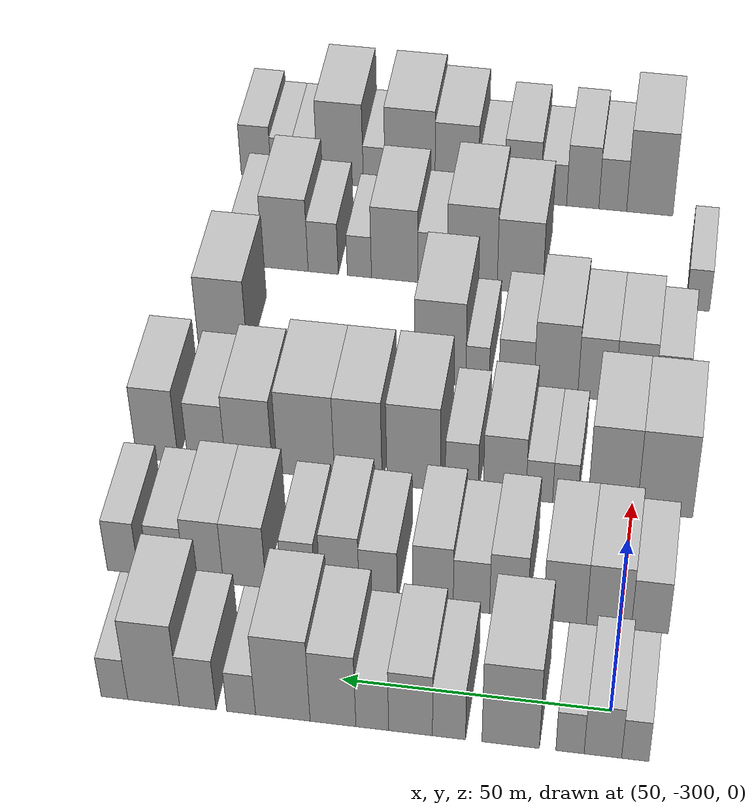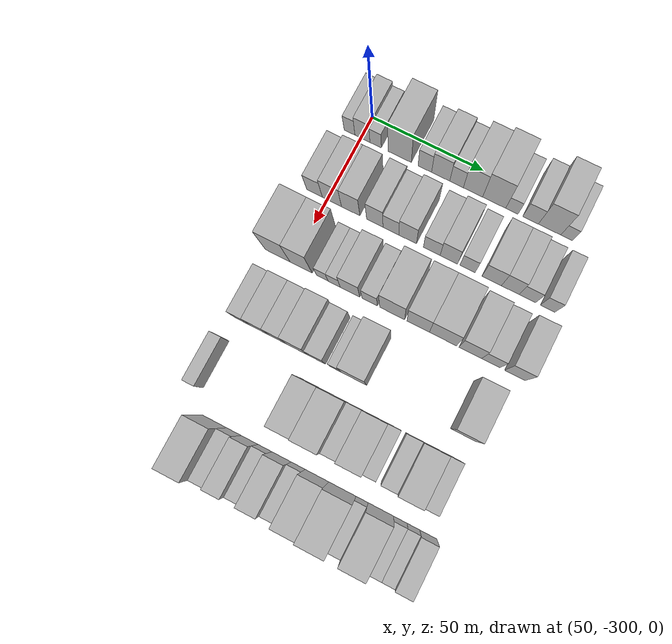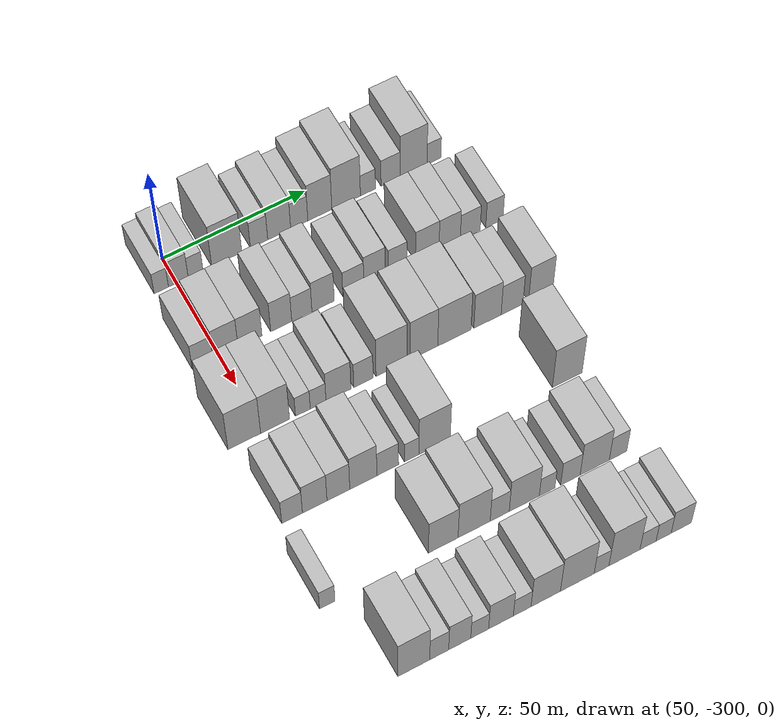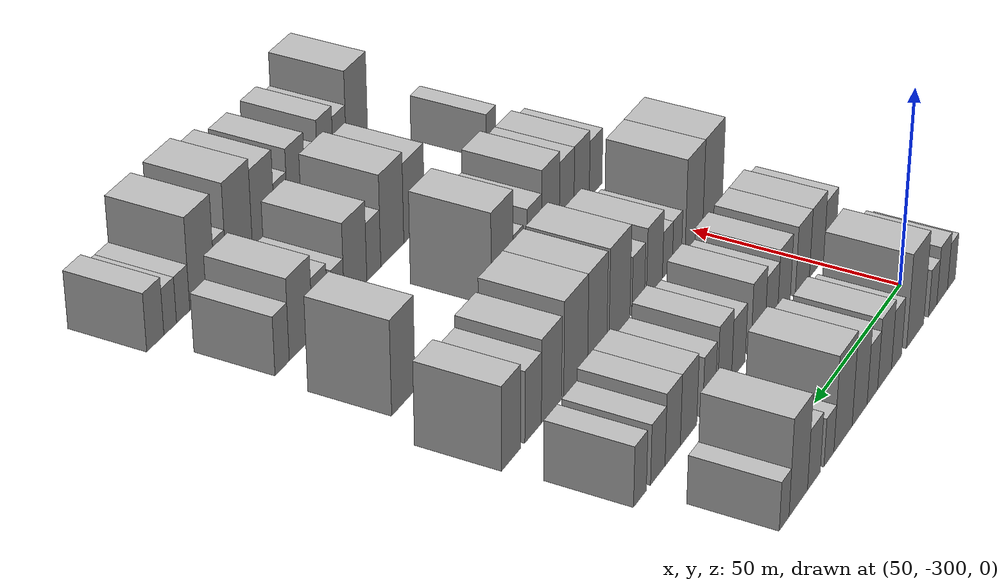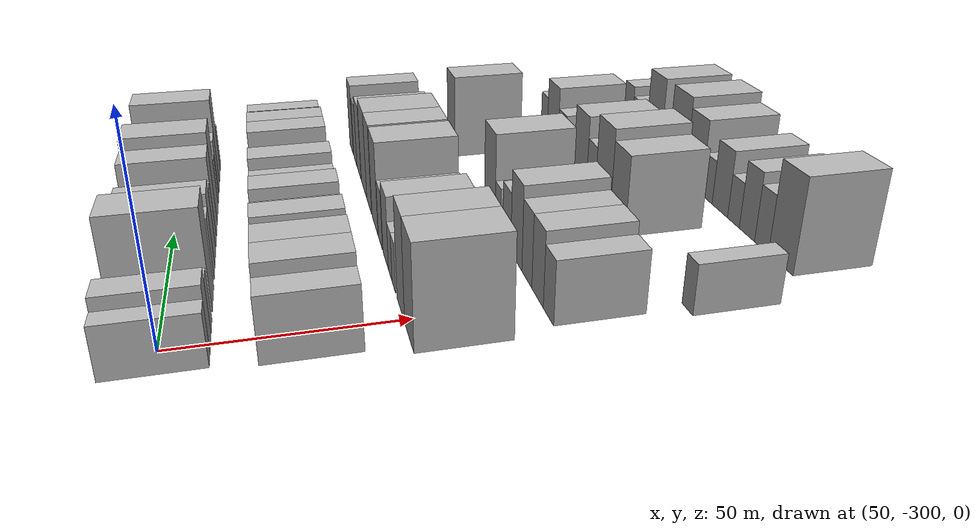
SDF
<sdf version="1.6">
 <world name="default">
  <model name="building_24">
   <static>1</static>
   <pose>50.0000 -305.2619 0 0.000000 0.000000 0.000000</pose>
   <link name="link">
    <pose>0 0 6.00 0 0 0</pose>
    <collision name="collision"><geometry><box><size>20.0000 4.9245 12.0000</size></box></geometry></collision>
    <visual name="visual">
     <cast_shadows>0</cast_shadows>
     <geometry><box><size>20.0000 4.9245 12.0000</size></box></geometry>
     <material>
      <script>
       <uri>model://HANNAS_wall/materials/scripts</uri>
       <uri>model://HANNAS_wall/materials/textures</uri>
       <name>vrc/HANNAS_wall</name>
      </script>
     </material>
    </visual>
   </link>
  </model>
  <model name="building_25">
   <static>1</static>
   <pose>50.0000 -299.4047 0 0.000000 0.000000 0.000000</pose>
   <link name="link">
    <pose>0 0 7.50 0 0 0</pose>
    <collision name="collision"><geometry><box><size>20.0000 6.7900 15.0000</size></box></geometry></collision>
    <visual name="visual">
     <cast_shadows>0</cast_shadows>
     <geometry><box><size>20.0000 6.7900 15.0000</size></box></geometry>
     <material>
      <script>
       <uri>model://HANNAS_wall/materials/scripts</uri>
       <uri>model://HANNAS_wall/materials/textures</uri>
       <name>vrc/HANNAS_wall</name>
      </script>
     </material>
    </visual>
   </link>
  </model>
  <model name="building_26">
   <static>1</static>
   <pose>50.0000 -293.4387 0 0.000000 0.000000 0.000000</pose>
   <link name="link">
    <pose>0 0 6.00 0 0 0</pose>
    <collision name="collision"><geometry><box><size>20.0000 5.1421 12.0000</size></box></geometry></collision>
    <visual name="visual">
     <cast_shadows>0</cast_shadows>
     <geometry><box><size>20.0000 5.1421 12.0000</size></box></geometry>
     <material>
      <script>
       <uri>model://HANNAS_wall/materials/scripts</uri>
       <uri>model://HANNAS_wall/materials/textures</uri>
       <name>vrc/HANNAS_wall</name>
      </script>
     </material>
    </visual>
   </link>
  </model>
  <model name="building_27">
   <static>1</static>
   <pose>50.0000 -282.6276 0 0.000000 0.000000 0.000000</pose>
   <link name="link">
    <pose>0 0 12.00 0 0 0</pose>
    <collision name="collision"><geometry><box><size>20.0000 10.4801 24.0000</size></box></geometry></collision>
    <visual name="visual">
     <cast_shadows>0</cast_shadows>
     <geometry><box><size>20.0000 10.4801 24.0000</size></box></geometry>
     <material>
      <script>
       <uri>model://HANNAS_wall/materials/scripts</uri>
       <uri>model://HANNAS_wall/materials/textures</uri>
       <name>vrc/HANNAS_wall</name>
      </script>
     </material>
    </visual>
   </link>
  </model>
  <model name="building_28">
   <static>1</static>
   <pose>50.0000 -271.3541 0 0.000000 0.000000 0.000000</pose>
   <link name="link">
    <pose>0 0 7.50 0 0 0</pose>
    <collision name="collision"><geometry><box><size>20.0000 6.0669 15.0000</size></box></geometry></collision>
    <visual name="visual">
     <cast_shadows>0</cast_shadows>
     <geometry><box><size>20.0000 6.0669 15.0000</size></box></geometry>
     <material>
      <script>
       <uri>model://HANNAS_wall/materials/scripts</uri>
       <uri>model://HANNAS_wall/materials/textures</uri>
       <name>vrc/HANNAS_wall</name>
      </script>
     </material>
    </visual>
   </link>
  </model>
  <model name="building_29">
   <static>1</static>
   <pose>50.0000 -264.2918 0 0.000000 0.000000 0.000000</pose>
   <link name="link">
    <pose>0 0 9.00 0 0 0</pose>
    <collision name="collision"><geometry><box><size>20.0000 8.0576 18.0000</size></box></geometry></collision>
    <visual name="visual">
     <cast_shadows>0</cast_shadows>
     <geometry><box><size>20.0000 8.0576 18.0000</size></box></geometry>
     <material>
      <script>
       <uri>model://HANNAS_wall/materials/scripts</uri>
       <uri>model://HANNAS_wall/materials/textures</uri>
       <name>vrc/HANNAS_wall</name>
      </script>
     </material>
    </visual>
   </link>
  </model>
  <model name="building_30">
   <static>1</static>
   <pose>50.0000 -257.2334 0 0.000000 0.000000 0.000000</pose>
   <link name="link">
    <pose>0 0 7.50 0 0 0</pose>
    <collision name="collision"><geometry><box><size>20.0000 6.0591 15.0000</size></box></geometry></collision>
    <visual name="visual">
     <cast_shadows>0</cast_shadows>
     <geometry><box><size>20.0000 6.0591 15.0000</size></box></geometry>
     <material>
      <script>
       <uri>model://HANNAS_wall/materials/scripts</uri>
       <uri>model://HANNAS_wall/materials/textures</uri>
       <name>vrc/HANNAS_wall</name>
      </script>
     </material>
    </visual>
   </link>
  </model>
  <model name="building_31">
   <static>1</static>
   <pose>50.0000 -249.9529 0 0.000000 0.000000 0.000000</pose>
   <link name="link">
    <pose>0 0 10.50 0 0 0</pose>
    <collision name="collision"><geometry><box><size>20.0000 8.5019 21.0000</size></box></geometry></collision>
    <visual name="visual">
     <cast_shadows>0</cast_shadows>
     <geometry><box><size>20.0000 8.5019 21.0000</size></box></geometry>
     <material>
      <script>
       <uri>model://HANNAS_wall/materials/scripts</uri>
       <uri>model://HANNAS_wall/materials/textures</uri>
       <name>vrc/HANNAS_wall</name>
      </script>
     </material>
    </visual>
   </link>
  </model>
  <model name="building_32">
   <static>1</static>
   <pose>50.0000 -240.6253 0 0.000000 0.000000 0.000000</pose>
   <link name="link">
    <pose>0 0 12.00 0 0 0</pose>
    <collision name="collision"><geometry><box><size>20.0000 10.1534 24.0000</size></box></geometry></collision>
    <visual name="visual">
     <cast_shadows>0</cast_shadows>
     <geometry><box><size>20.0000 10.1534 24.0000</size></box></geometry>
     <material>
      <script>
       <uri>model://HANNAS_wall/materials/scripts</uri>
       <uri>model://HANNAS_wall/materials/textures</uri>
       <name>vrc/HANNAS_wall</name>
      </script>
     </material>
    </visual>
   </link>
  </model>
  <model name="building_33">
   <static>1</static>
   <pose>50.0000 -232.8505 0 0.000000 0.000000 0.000000</pose>
   <link name="link">
    <pose>0 0 6.00 0 0 0</pose>
    <collision name="collision"><geometry><box><size>20.0000 5.3963 12.0000</size></box></geometry></collision>
    <visual name="visual">
     <cast_shadows>0</cast_shadows>
     <geometry><box><size>20.0000 5.3963 12.0000</size></box></geometry>
     <material>
      <script>
       <uri>model://HANNAS_wall/materials/scripts</uri>
       <uri>model://HANNAS_wall/materials/textures</uri>
       <name>vrc/HANNAS_wall</name>
      </script>
     </material>
    </visual>
   </link>
  </model>
  <model name="building_34">
   <static>1</static>
   <pose>50.0000 -224.7218 0 0.000000 0.000000 0.000000</pose>
   <link name="link">
    <pose>0 0 7.50 0 0 0</pose>
    <collision name="collision"><geometry><box><size>20.0000 6.8612 15.0000</size></box></geometry></collision>
    <visual name="visual">
     <cast_shadows>0</cast_shadows>
     <geometry><box><size>20.0000 6.8612 15.0000</size></box></geometry>
     <material>
      <script>
       <uri>model://HANNAS_wall/materials/scripts</uri>
       <uri>model://HANNAS_wall/materials/textures</uri>
       <name>vrc/HANNAS_wall</name>
      </script>
     </material>
    </visual>
   </link>
  </model>
  <model name="building_35">
   <static>1</static>
   <pose>50.0000 -216.4351 0 0.000000 0.000000 0.000000</pose>
   <link name="link">
    <pose>0 0 12.00 0 0 0</pose>
    <collision name="collision"><geometry><box><size>20.0000 9.7122 24.0000</size></box></geometry></collision>
    <visual name="visual">
     <cast_shadows>0</cast_shadows>
     <geometry><box><size>20.0000 9.7122 24.0000</size></box></geometry>
     <material>
      <script>
       <uri>model://HANNAS_wall/materials/scripts</uri>
       <uri>model://HANNAS_wall/materials/textures</uri>
       <name>vrc/HANNAS_wall</name>
      </script>
     </material>
    </visual>
   </link>
  </model>
  <model name="building_36">
   <static>1</static>
   <pose>50.0000 -209.0599 0 0.000000 0.000000 0.000000</pose>
   <link name="link">
    <pose>0 0 6.00 0 0 0</pose>
    <collision name="collision"><geometry><box><size>20.0000 5.0381 12.0000</size></box></geometry></collision>
    <visual name="visual">
     <cast_shadows>0</cast_shadows>
     <geometry><box><size>20.0000 5.0381 12.0000</size></box></geometry>
     <material>
      <script>
       <uri>model://HANNAS_wall/materials/scripts</uri>
       <uri>model://HANNAS_wall/materials/textures</uri>
       <name>vrc/HANNAS_wall</name>
      </script>
     </material>
    </visual>
   </link>
  </model>
  <model name="building_135">
   <static>1</static>
   <pose>79.0000 -305.7151 0 0.000000 0.000000 0.000000</pose>
   <link name="link">
    <pose>0 0 7.50 0 0 0</pose>
    <collision name="collision"><geometry><box><size>20.0000 7.0345 15.0000</size></box></geometry></collision>
    <visual name="visual">
     <cast_shadows>0</cast_shadows>
     <geometry><box><size>20.0000 7.0345 15.0000</size></box></geometry>
     <material>
      <script>
       <uri>model://HANNAS_wall/materials/scripts</uri>
       <uri>model://HANNAS_wall/materials/textures</uri>
       <name>vrc/HANNAS_wall</name>
      </script>
     </material>
    </visual>
   </link>
  </model>
  <model name="building_136">
   <static>1</static>
   <pose>79.0000 -297.9219 0 0.000000 0.000000 0.000000</pose>
   <link name="link">
    <pose>0 0 9.00 0 0 0</pose>
    <collision name="collision"><geometry><box><size>20.0000 8.5520 18.0000</size></box></geometry></collision>
    <visual name="visual">
     <cast_shadows>0</cast_shadows>
     <geometry><box><size>20.0000 8.5520 18.0000</size></box></geometry>
     <material>
      <script>
       <uri>model://HANNAS_wall/materials/scripts</uri>
       <uri>model://HANNAS_wall/materials/textures</uri>
       <name>vrc/HANNAS_wall</name>
      </script>
     </material>
    </visual>
   </link>
  </model>
  <model name="building_137">
   <static>1</static>
   <pose>79.0000 -289.5466 0 0.000000 0.000000 0.000000</pose>
   <link name="link">
    <pose>0 0 9.00 0 0 0</pose>
    <collision name="collision"><geometry><box><size>20.0000 8.1985 18.0000</size></box></geometry></collision>
    <visual name="visual">
     <cast_shadows>0</cast_shadows>
     <geometry><box><size>20.0000 8.1985 18.0000</size></box></geometry>
     <material>
      <script>
       <uri>model://HANNAS_wall/materials/scripts</uri>
       <uri>model://HANNAS_wall/materials/textures</uri>
       <name>vrc/HANNAS_wall</name>
      </script>
     </material>
    </visual>
   </link>
  </model>
  <model name="building_138">
   <static>1</static>
   <pose>79.0000 -278.8216 0 0.000000 0.000000 0.000000</pose>
   <link name="link">
    <pose>0 0 9.00 0 0 0</pose>
    <collision name="collision"><geometry><box><size>20.0000 7.2515 18.0000</size></box></geometry></collision>
    <visual name="visual">
     <cast_shadows>0</cast_shadows>
     <geometry><box><size>20.0000 7.2515 18.0000</size></box></geometry>
     <material>
      <script>
       <uri>model://HANNAS_wall/materials/scripts</uri>
       <uri>model://HANNAS_wall/materials/textures</uri>
       <name>vrc/HANNAS_wall</name>
      </script>
     </material>
    </visual>
   </link>
  </model>
  <model name="building_139">
   <static>1</static>
   <pose>79.0000 -271.7017 0 0.000000 0.000000 0.000000</pose>
   <link name="link">
    <pose>0 0 7.50 0 0 0</pose>
    <collision name="collision"><geometry><box><size>20.0000 6.9884 15.0000</size></box></geometry></collision>
    <visual name="visual">
     <cast_shadows>0</cast_shadows>
     <geometry><box><size>20.0000 6.9884 15.0000</size></box></geometry>
     <material>
      <script>
       <uri>model://HANNAS_wall/materials/scripts</uri>
       <uri>model://HANNAS_wall/materials/textures</uri>
       <name>vrc/HANNAS_wall</name>
      </script>
     </material>
    </visual>
   </link>
  </model>
  <model name="building_140">
   <static>1</static>
   <pose>79.0000 -264.3253 0 0.000000 0.000000 0.000000</pose>
   <link name="link">
    <pose>0 0 9.00 0 0 0</pose>
    <collision name="collision"><geometry><box><size>20.0000 7.7644 18.0000</size></box></geometry></collision>
    <visual name="visual">
     <cast_shadows>0</cast_shadows>
     <geometry><box><size>20.0000 7.7644 18.0000</size></box></geometry>
     <material>
      <script>
       <uri>model://HANNAS_wall/materials/scripts</uri>
       <uri>model://HANNAS_wall/materials/textures</uri>
       <name>vrc/HANNAS_wall</name>
      </script>
     </material>
    </visual>
   </link>
  </model>
  <model name="building_141">
   <static>1</static>
   <pose>79.0000 -253.7672 0 0.000000 0.000000 0.000000</pose>
   <link name="link">
    <pose>0 0 7.50 0 0 0</pose>
    <collision name="collision"><geometry><box><size>20.0000 7.3520 15.0000</size></box></geometry></collision>
    <visual name="visual">
     <cast_shadows>0</cast_shadows>
     <geometry><box><size>20.0000 7.3520 15.0000</size></box></geometry>
     <material>
      <script>
       <uri>model://HANNAS_wall/materials/scripts</uri>
       <uri>model://HANNAS_wall/materials/textures</uri>
       <name>vrc/HANNAS_wall</name>
      </script>
     </material>
    </visual>
   </link>
  </model>
  <model name="building_142">
   <static>1</static>
   <pose>79.0000 -246.3065 0 0.000000 0.000000 0.000000</pose>
   <link name="link">
    <pose>0 0 9.00 0 0 0</pose>
    <collision name="collision"><geometry><box><size>20.0000 7.5694 18.0000</size></box></geometry></collision>
    <visual name="visual">
     <cast_shadows>0</cast_shadows>
     <geometry><box><size>20.0000 7.5694 18.0000</size></box></geometry>
     <material>
      <script>
       <uri>model://HANNAS_wall/materials/scripts</uri>
       <uri>model://HANNAS_wall/materials/textures</uri>
       <name>vrc/HANNAS_wall</name>
      </script>
     </material>
    </visual>
   </link>
  </model>
  <model name="building_143">
   <static>1</static>
   <pose>79.0000 -238.2135 0 0.000000 0.000000 0.000000</pose>
   <link name="link">
    <pose>0 0 7.50 0 0 0</pose>
    <collision name="collision"><geometry><box><size>20.0000 6.6166 15.0000</size></box></geometry></collision>
    <visual name="visual">
     <cast_shadows>0</cast_shadows>
     <geometry><box><size>20.0000 6.6166 15.0000</size></box></geometry>
     <material>
      <script>
       <uri>model://HANNAS_wall/materials/scripts</uri>
       <uri>model://HANNAS_wall/materials/textures</uri>
       <name>vrc/HANNAS_wall</name>
      </script>
     </material>
    </visual>
   </link>
  </model>
  <model name="building_144">
   <static>1</static>
   <pose>79.0000 -227.7275 0 0.000000 0.000000 0.000000</pose>
   <link name="link">
    <pose>0 0 9.00 0 0 0</pose>
    <collision name="collision"><geometry><box><size>20.0000 8.3553 18.0000</size></box></geometry></collision>
    <visual name="visual">
     <cast_shadows>0</cast_shadows>
     <geometry><box><size>20.0000 8.3553 18.0000</size></box></geometry>
     <material>
      <script>
       <uri>model://HANNAS_wall/materials/scripts</uri>
       <uri>model://HANNAS_wall/materials/textures</uri>
       <name>vrc/HANNAS_wall</name>
      </script>
     </material>
    </visual>
   </link>
  </model>
  <model name="building_145">
   <static>1</static>
   <pose>79.0000 -219.7499 0 0.000000 0.000000 0.000000</pose>
   <link name="link">
    <pose>0 0 9.00 0 0 0</pose>
    <collision name="collision"><geometry><box><size>20.0000 7.6000 18.0000</size></box></geometry></collision>
    <visual name="visual">
     <cast_shadows>0</cast_shadows>
     <geometry><box><size>20.0000 7.6000 18.0000</size></box></geometry>
     <material>
      <script>
       <uri>model://HANNAS_wall/materials/scripts</uri>
       <uri>model://HANNAS_wall/materials/textures</uri>
       <name>vrc/HANNAS_wall</name>
      </script>
     </material>
    </visual>
   </link>
  </model>
  <model name="building_146">
   <static>1</static>
   <pose>79.0000 -212.3900 0 0.000000 0.000000 0.000000</pose>
   <link name="link">
    <pose>0 0 7.50 0 0 0</pose>
    <collision name="collision"><geometry><box><size>20.0000 7.1197 15.0000</size></box></geometry></collision>
    <visual name="visual">
     <cast_shadows>0</cast_shadows>
     <geometry><box><size>20.0000 7.1197 15.0000</size></box></geometry>
     <material>
      <script>
       <uri>model://HANNAS_wall/materials/scripts</uri>
       <uri>model://HANNAS_wall/materials/textures</uri>
       <name>vrc/HANNAS_wall</name>
      </script>
     </material>
    </visual>
   </link>
  </model>
  <model name="building_147">
   <static>1</static>
   <pose>79.0000 -203.7440 0 0.000000 0.000000 0.000000</pose>
   <link name="link">
    <pose>0 0 7.50 0 0 0</pose>
    <collision name="collision"><geometry><box><size>20.0000 6.1723 15.0000</size></box></geometry></collision>
    <visual name="visual">
     <cast_shadows>0</cast_shadows>
     <geometry><box><size>20.0000 6.1723 15.0000</size></box></geometry>
     <material>
      <script>
       <uri>model://HANNAS_wall/materials/scripts</uri>
       <uri>model://HANNAS_wall/materials/textures</uri>
       <name>vrc/HANNAS_wall</name>
      </script>
     </material>
    </visual>
   </link>
  </model>
  <model name="building_247">
   <static>1</static>
   <pose>108.0000 -306.5224 0 0.000000 0.000000 0.000000</pose>
   <link name="link">
    <pose>0 0 12.00 0 0 0</pose>
    <collision name="collision"><geometry><box><size>20.0000 11.0101 24.0000</size></box></geometry></collision>
    <visual name="visual">
     <cast_shadows>0</cast_shadows>
     <geometry><box><size>20.0000 11.0101 24.0000</size></box></geometry>
     <material>
      <script>
       <uri>model://HANNAS_wall/materials/scripts</uri>
       <uri>model://HANNAS_wall/materials/textures</uri>
       <name>vrc/HANNAS_wall</name>
      </script>
     </material>
    </visual>
   </link>
  </model>
  <model name="building_248">
   <static>1</static>
   <pose>108.0000 -296.1351 0 0.000000 0.000000 0.000000</pose>
   <link name="link">
    <pose>0 0 12.00 0 0 0</pose>
    <collision name="collision"><geometry><box><size>20.0000 9.7645 24.0000</size></box></geometry></collision>
    <visual name="visual">
     <cast_shadows>0</cast_shadows>
     <geometry><box><size>20.0000 9.7645 24.0000</size></box></geometry>
     <material>
      <script>
       <uri>model://HANNAS_wall/materials/scripts</uri>
       <uri>model://HANNAS_wall/materials/textures</uri>
       <name>vrc/HANNAS_wall</name>
      </script>
     </material>
    </visual>
   </link>
  </model>
  <model name="building_249">
   <static>1</static>
   <pose>108.0000 -286.7347 0 0.000000 0.000000 0.000000</pose>
   <link name="link">
    <pose>0 0 6.00 0 0 0</pose>
    <collision name="collision"><geometry><box><size>20.0000 5.0363 12.0000</size></box></geometry></collision>
    <visual name="visual">
     <cast_shadows>0</cast_shadows>
     <geometry><box><size>20.0000 5.0363 12.0000</size></box></geometry>
     <material>
      <script>
       <uri>model://HANNAS_wall/materials/scripts</uri>
       <uri>model://HANNAS_wall/materials/textures</uri>
       <name>vrc/HANNAS_wall</name>
      </script>
     </material>
    </visual>
   </link>
  </model>
  <model name="building_250">
   <static>1</static>
   <pose>108.0000 -281.5437 0 0.000000 0.000000 0.000000</pose>
   <link name="link">
    <pose>0 0 6.00 0 0 0</pose>
    <collision name="collision"><geometry><box><size>20.0000 5.3458 12.0000</size></box></geometry></collision>
    <visual name="visual">
     <cast_shadows>0</cast_shadows>
     <geometry><box><size>20.0000 5.3458 12.0000</size></box></geometry>
     <material>
      <script>
       <uri>model://HANNAS_wall/materials/scripts</uri>
       <uri>model://HANNAS_wall/materials/textures</uri>
       <name>vrc/HANNAS_wall</name>
      </script>
     </material>
    </visual>
   </link>
  </model>
  <model name="building_251">
   <static>1</static>
   <pose>108.0000 -274.6024 0 0.000000 0.000000 0.000000</pose>
   <link name="link">
    <pose>0 0 9.00 0 0 0</pose>
    <collision name="collision"><geometry><box><size>20.0000 8.5367 18.0000</size></box></geometry></collision>
    <visual name="visual">
     <cast_shadows>0</cast_shadows>
     <geometry><box><size>20.0000 8.5367 18.0000</size></box></geometry>
     <material>
      <script>
       <uri>model://HANNAS_wall/materials/scripts</uri>
       <uri>model://HANNAS_wall/materials/textures</uri>
       <name>vrc/HANNAS_wall</name>
      </script>
     </material>
    </visual>
   </link>
  </model>
  <model name="building_252">
   <static>1</static>
   <pose>108.0000 -266.0245 0 0.000000 0.000000 0.000000</pose>
   <link name="link">
    <pose>0 0 7.50 0 0 0</pose>
    <collision name="collision"><geometry><box><size>20.0000 6.6192 15.0000</size></box></geometry></collision>
    <visual name="visual">
     <cast_shadows>0</cast_shadows>
     <geometry><box><size>20.0000 6.6192 15.0000</size></box></geometry>
     <material>
      <script>
       <uri>model://HANNAS_wall/materials/scripts</uri>
       <uri>model://HANNAS_wall/materials/textures</uri>
       <name>vrc/HANNAS_wall</name>
      </script>
     </material>
    </visual>
   </link>
  </model>
  <model name="building_253">
   <static>1</static>
   <pose>108.0000 -256.3347 0 0.000000 0.000000 0.000000</pose>
   <link name="link">
    <pose>0 0 12.00 0 0 0</pose>
    <collision name="collision"><geometry><box><size>20.0000 10.7603 24.0000</size></box></geometry></collision>
    <visual name="visual">
     <cast_shadows>0</cast_shadows>
     <geometry><box><size>20.0000 10.7603 24.0000</size></box></geometry>
     <material>
      <script>
       <uri>model://HANNAS_wall/materials/scripts</uri>
       <uri>model://HANNAS_wall/materials/textures</uri>
       <name>vrc/HANNAS_wall</name>
      </script>
     </material>
    </visual>
   </link>
  </model>
  <model name="building_254">
   <static>1</static>
   <pose>108.0000 -245.1231 0 0.000000 0.000000 0.000000</pose>
   <link name="link">
    <pose>0 0 12.00 0 0 0</pose>
    <collision name="collision"><geometry><box><size>20.0000 9.6631 24.0000</size></box></geometry></collision>
    <visual name="visual">
     <cast_shadows>0</cast_shadows>
     <geometry><box><size>20.0000 9.6631 24.0000</size></box></geometry>
     <material>
      <script>
       <uri>model://HANNAS_wall/materials/scripts</uri>
       <uri>model://HANNAS_wall/materials/textures</uri>
       <name>vrc/HANNAS_wall</name>
      </script>
     </material>
    </visual>
   </link>
  </model>
  <model name="building_255">
   <static>1</static>
   <pose>108.0000 -234.4763 0 0.000000 0.000000 0.000000</pose>
   <link name="link">
    <pose>0 0 12.00 0 0 0</pose>
    <collision name="collision"><geometry><box><size>20.0000 11.6304 24.0000</size></box></geometry></collision>
    <visual name="visual">
     <cast_shadows>0</cast_shadows>
     <geometry><box><size>20.0000 11.6304 24.0000</size></box></geometry>
     <material>
      <script>
       <uri>model://HANNAS_wall/materials/scripts</uri>
       <uri>model://HANNAS_wall/materials/textures</uri>
       <name>vrc/HANNAS_wall</name>
      </script>
     </material>
    </visual>
   </link>
  </model>
  <model name="building_256">
   <static>1</static>
   <pose>108.0000 -222.8500 0 0.000000 0.000000 0.000000</pose>
   <link name="link">
    <pose>0 0 10.50 0 0 0</pose>
    <collision name="collision"><geometry><box><size>20.0000 9.6221 21.0000</size></box></geometry></collision>
    <visual name="visual">
     <cast_shadows>0</cast_shadows>
     <geometry><box><size>20.0000 9.6221 21.0000</size></box></geometry>
     <material>
      <script>
       <uri>model://HANNAS_wall/materials/scripts</uri>
       <uri>model://HANNAS_wall/materials/textures</uri>
       <name>vrc/HANNAS_wall</name>
      </script>
     </material>
    </visual>
   </link>
  </model>
  <model name="building_257">
   <static>1</static>
   <pose>108.0000 -214.1716 0 0.000000 0.000000 0.000000</pose>
   <link name="link">
    <pose>0 0 9.00 0 0 0</pose>
    <collision name="collision"><geometry><box><size>20.0000 7.7348 18.0000</size></box></geometry></collision>
    <visual name="visual">
     <cast_shadows>0</cast_shadows>
     <geometry><box><size>20.0000 7.7348 18.0000</size></box></geometry>
     <material>
      <script>
       <uri>model://HANNAS_wall/materials/scripts</uri>
       <uri>model://HANNAS_wall/materials/textures</uri>
       <name>vrc/HANNAS_wall</name>
      </script>
     </material>
    </visual>
   </link>
  </model>
  <model name="building_258">
   <static>1</static>
   <pose>108.0000 -203.9824 0 0.000000 0.000000 0.000000</pose>
   <link name="link">
    <pose>0 0 10.50 0 0 0</pose>
    <collision name="collision"><geometry><box><size>20.0000 8.6435 21.0000</size></box></geometry></collision>
    <visual name="visual">
     <cast_shadows>0</cast_shadows>
     <geometry><box><size>20.0000 8.6435 21.0000</size></box></geometry>
     <material>
      <script>
       <uri>model://HANNAS_wall/materials/scripts</uri>
       <uri>model://HANNAS_wall/materials/textures</uri>
       <name>vrc/HANNAS_wall</name>
      </script>
     </material>
    </visual>
   </link>
  </model>
  <model name="building_357">
   <static>1</static>
   <pose>137.0000 -305.6986 0 0.000000 0.000000 0.000000</pose>
   <link name="link">
    <pose>0 0 7.50 0 0 0</pose>
    <collision name="collision"><geometry><box><size>20.0000 6.8842 15.0000</size></box></geometry></collision>
    <visual name="visual">
     <cast_shadows>0</cast_shadows>
     <geometry><box><size>20.0000 6.8842 15.0000</size></box></geometry>
     <material>
      <script>
       <uri>model://HANNAS_wall/materials/scripts</uri>
       <uri>model://HANNAS_wall/materials/textures</uri>
       <name>vrc/HANNAS_wall</name>
      </script>
     </material>
    </visual>
   </link>
  </model>
  <model name="building_358">
   <static>1</static>
   <pose>137.0000 -298.1629 0 0.000000 0.000000 0.000000</pose>
   <link name="link">
    <pose>0 0 9.00 0 0 0</pose>
    <collision name="collision"><geometry><box><size>20.0000 8.1872 18.0000</size></box></geometry></collision>
    <visual name="visual">
     <cast_shadows>0</cast_shadows>
     <geometry><box><size>20.0000 8.1872 18.0000</size></box></geometry>
     <material>
      <script>
       <uri>model://HANNAS_wall/materials/scripts</uri>
       <uri>model://HANNAS_wall/materials/textures</uri>
       <name>vrc/HANNAS_wall</name>
      </script>
     </material>
    </visual>
   </link>
  </model>
  <model name="building_359">
   <static>1</static>
   <pose>137.0000 -290.2433 0 0.000000 0.000000 0.000000</pose>
   <link name="link">
    <pose>0 0 9.00 0 0 0</pose>
    <collision name="collision"><geometry><box><size>20.0000 7.6519 18.0000</size></box></geometry></collision>
    <visual name="visual">
     <cast_shadows>0</cast_shadows>
     <geometry><box><size>20.0000 7.6519 18.0000</size></box></geometry>
     <material>
      <script>
       <uri>model://HANNAS_wall/materials/scripts</uri>
       <uri>model://HANNAS_wall/materials/textures</uri>
       <name>vrc/HANNAS_wall</name>
      </script>
     </material>
    </visual>
   </link>
  </model>
  <model name="building_360">
   <static>1</static>
   <pose>137.0000 -281.8521 0 0.000000 0.000000 0.000000</pose>
   <link name="link">
    <pose>0 0 10.50 0 0 0</pose>
    <collision name="collision"><geometry><box><size>20.0000 9.1306 21.0000</size></box></geometry></collision>
    <visual name="visual">
     <cast_shadows>0</cast_shadows>
     <geometry><box><size>20.0000 9.1306 21.0000</size></box></geometry>
     <material>
      <script>
       <uri>model://HANNAS_wall/materials/scripts</uri>
       <uri>model://HANNAS_wall/materials/textures</uri>
       <name>vrc/HANNAS_wall</name>
      </script>
     </material>
    </visual>
   </link>
  </model>
  <model name="building_361">
   <static>1</static>
   <pose>137.0000 -273.6126 0 0.000000 0.000000 0.000000</pose>
   <link name="link">
    <pose>0 0 7.50 0 0 0</pose>
    <collision name="collision"><geometry><box><size>20.0000 7.3484 15.0000</size></box></geometry></collision>
    <visual name="visual">
     <cast_shadows>0</cast_shadows>
     <geometry><box><size>20.0000 7.3484 15.0000</size></box></geometry>
     <material>
      <script>
       <uri>model://HANNAS_wall/materials/scripts</uri>
       <uri>model://HANNAS_wall/materials/textures</uri>
       <name>vrc/HANNAS_wall</name>
      </script>
     </material>
    </visual>
   </link>
  </model>
  <model name="building_362">
   <static>1</static>
   <pose>137.0000 -265.4872 0 0.000000 0.000000 0.000000</pose>
   <link name="link">
    <pose>0 0 6.00 0 0 0</pose>
    <collision name="collision"><geometry><box><size>20.0000 4.9022 12.0000</size></box></geometry></collision>
    <visual name="visual">
     <cast_shadows>0</cast_shadows>
     <geometry><box><size>20.0000 4.9022 12.0000</size></box></geometry>
     <material>
      <script>
       <uri>model://HANNAS_wall/materials/scripts</uri>
       <uri>model://HANNAS_wall/materials/textures</uri>
       <name>vrc/HANNAS_wall</name>
      </script>
     </material>
    </visual>
   </link>
  </model>
  <model name="building_363">
   <static>1</static>
   <pose>137.0000 -257.6763 0 0.000000 0.000000 0.000000</pose>
   <link name="link">
    <pose>0 0 12.00 0 0 0</pose>
    <collision name="collision"><geometry><box><size>20.0000 10.7197 24.0000</size></box></geometry></collision>
    <visual name="visual">
     <cast_shadows>0</cast_shadows>
     <geometry><box><size>20.0000 10.7197 24.0000</size></box></geometry>
     <material>
      <script>
       <uri>model://HANNAS_wall/materials/scripts</uri>
       <uri>model://HANNAS_wall/materials/textures</uri>
       <name>vrc/HANNAS_wall</name>
      </script>
     </material>
    </visual>
   </link>
  </model>
  <model name="building_364">
   <static>1</static>
   <pose>137.0000 -211.7141 0 0.000000 0.000000 0.000000</pose>
   <link name="link">
    <pose>0 0 12.00 0 0 0</pose>
    <collision name="collision"><geometry><box><size>20.0000 10.4015 24.0000</size></box></geometry></collision>
    <visual name="visual">
     <cast_shadows>0</cast_shadows>
     <geometry><box><size>20.0000 10.4015 24.0000</size></box></geometry>
     <material>
      <script>
       <uri>model://HANNAS_wall/materials/scripts</uri>
       <uri>model://HANNAS_wall/materials/textures</uri>
       <name>vrc/HANNAS_wall</name>
      </script>
     </material>
    </visual>
   </link>
  </model>
  <model name="building_466">
   <static>1</static>
   <pose>166.0000 -309.5314 0 0.000000 0.000000 0.000000</pose>
   <link name="link">
    <pose>0 0 6.00 0 0 0</pose>
    <collision name="collision"><geometry><box><size>20.0000 5.0597 12.0000</size></box></geometry></collision>
    <visual name="visual">
     <cast_shadows>0</cast_shadows>
     <geometry><box><size>20.0000 5.0597 12.0000</size></box></geometry>
     <material>
      <script>
       <uri>model://HANNAS_wall/materials/scripts</uri>
       <uri>model://HANNAS_wall/materials/textures</uri>
       <name>vrc/HANNAS_wall</name>
      </script>
     </material>
    </visual>
   </link>
  </model>
  <model name="building_467">
   <static>1</static>
   <pose>166.0000 -271.0507 0 0.000000 0.000000 0.000000</pose>
   <link name="link">
    <pose>0 0 10.50 0 0 0</pose>
    <collision name="collision"><geometry><box><size>20.0000 9.9672 21.0000</size></box></geometry></collision>
    <visual name="visual">
     <cast_shadows>0</cast_shadows>
     <geometry><box><size>20.0000 9.9672 21.0000</size></box></geometry>
     <material>
      <script>
       <uri>model://HANNAS_wall/materials/scripts</uri>
       <uri>model://HANNAS_wall/materials/textures</uri>
       <name>vrc/HANNAS_wall</name>
      </script>
     </material>
    </visual>
   </link>
  </model>
  <model name="building_468">
   <static>1</static>
   <pose>166.0000 -260.6487 0 0.000000 0.000000 0.000000</pose>
   <link name="link">
    <pose>0 0 12.00 0 0 0</pose>
    <collision name="collision"><geometry><box><size>20.0000 10.8368 24.0000</size></box></geometry></collision>
    <visual name="visual">
     <cast_shadows>0</cast_shadows>
     <geometry><box><size>20.0000 10.8368 24.0000</size></box></geometry>
     <material>
      <script>
       <uri>model://HANNAS_wall/materials/scripts</uri>
       <uri>model://HANNAS_wall/materials/textures</uri>
       <name>vrc/HANNAS_wall</name>
      </script>
     </material>
    </visual>
   </link>
  </model>
  <model name="building_469">
   <static>1</static>
   <pose>166.0000 -251.9994 0 0.000000 0.000000 0.000000</pose>
   <link name="link">
    <pose>0 0 7.50 0 0 0</pose>
    <collision name="collision"><geometry><box><size>20.0000 6.4620 15.0000</size></box></geometry></collision>
    <visual name="visual">
     <cast_shadows>0</cast_shadows>
     <geometry><box><size>20.0000 6.4620 15.0000</size></box></geometry>
     <material>
      <script>
       <uri>model://HANNAS_wall/materials/scripts</uri>
       <uri>model://HANNAS_wall/materials/textures</uri>
       <name>vrc/HANNAS_wall</name>
      </script>
     </material>
    </visual>
   </link>
  </model>
  <model name="building_470">
   <static>1</static>
   <pose>166.0000 -243.6344 0 0.000000 0.000000 0.000000</pose>
   <link name="link">
    <pose>0 0 10.50 0 0 0</pose>
    <collision name="collision"><geometry><box><size>20.0000 10.2679 21.0000</size></box></geometry></collision>
    <visual name="visual">
     <cast_shadows>0</cast_shadows>
     <geometry><box><size>20.0000 10.2679 21.0000</size></box></geometry>
     <material>
      <script>
       <uri>model://HANNAS_wall/materials/scripts</uri>
       <uri>model://HANNAS_wall/materials/textures</uri>
       <name>vrc/HANNAS_wall</name>
      </script>
     </material>
    </visual>
   </link>
  </model>
  <model name="building_471">
   <static>1</static>
   <pose>166.0000 -235.8266 0 0.000000 0.000000 0.000000</pose>
   <link name="link">
    <pose>0 0 6.00 0 0 0</pose>
    <collision name="collision"><geometry><box><size>20.0000 5.3478 12.0000</size></box></geometry></collision>
    <visual name="visual">
     <cast_shadows>0</cast_shadows>
     <geometry><box><size>20.0000 5.3478 12.0000</size></box></geometry>
     <material>
      <script>
       <uri>model://HANNAS_wall/materials/scripts</uri>
       <uri>model://HANNAS_wall/materials/textures</uri>
       <name>vrc/HANNAS_wall</name>
      </script>
     </material>
    </visual>
   </link>
  </model>
  <model name="building_472">
   <static>1</static>
   <pose>166.0000 -227.8135 0 0.000000 0.000000 0.000000</pose>
   <link name="link">
    <pose>0 0 7.50 0 0 0</pose>
    <collision name="collision"><geometry><box><size>20.0000 6.6783 15.0000</size></box></geometry></collision>
    <visual name="visual">
     <cast_shadows>0</cast_shadows>
     <geometry><box><size>20.0000 6.6783 15.0000</size></box></geometry>
     <material>
      <script>
       <uri>model://HANNAS_wall/materials/scripts</uri>
       <uri>model://HANNAS_wall/materials/textures</uri>
       <name>vrc/HANNAS_wall</name>
      </script>
     </material>
    </visual>
   </link>
  </model>
  <model name="building_473">
   <static>1</static>
   <pose>166.0000 -219.4277 0 0.000000 0.000000 0.000000</pose>
   <link name="link">
    <pose>0 0 10.50 0 0 0</pose>
    <collision name="collision"><geometry><box><size>20.0000 10.0934 21.0000</size></box></geometry></collision>
    <visual name="visual">
     <cast_shadows>0</cast_shadows>
     <geometry><box><size>20.0000 10.0934 21.0000</size></box></geometry>
     <material>
      <script>
       <uri>model://HANNAS_wall/materials/scripts</uri>
       <uri>model://HANNAS_wall/materials/textures</uri>
       <name>vrc/HANNAS_wall</name>
      </script>
     </material>
    </visual>
   </link>
  </model>
  <model name="building_474">
   <static>1</static>
   <pose>166.0000 -211.3481 0 0.000000 0.000000 0.000000</pose>
   <link name="link">
    <pose>0 0 7.50 0 0 0</pose>
    <collision name="collision"><geometry><box><size>20.0000 6.0659 15.0000</size></box></geometry></collision>
    <visual name="visual">
     <cast_shadows>0</cast_shadows>
     <geometry><box><size>20.0000 6.0659 15.0000</size></box></geometry>
     <material>
      <script>
       <uri>model://HANNAS_wall/materials/scripts</uri>
       <uri>model://HANNAS_wall/materials/textures</uri>
       <name>vrc/HANNAS_wall</name>
      </script>
     </material>
    </visual>
   </link>
  </model>
  <model name="building_584">
   <static>1</static>
   <pose>195.0000 -297.0308 0 0.000000 0.000000 0.000000</pose>
   <link name="link">
    <pose>0 0 12.00 0 0 0</pose>
    <collision name="collision"><geometry><box><size>20.0000 10.3893 24.0000</size></box></geometry></collision>
    <visual name="visual">
     <cast_shadows>0</cast_shadows>
     <geometry><box><size>20.0000 10.3893 24.0000</size></box></geometry>
     <material>
      <script>
       <uri>model://HANNAS_wall/materials/scripts</uri>
       <uri>model://HANNAS_wall/materials/textures</uri>
       <name>vrc/HANNAS_wall</name>
      </script>
     </material>
    </visual>
   </link>
  </model>
  <model name="building_585">
   <static>1</static>
   <pose>195.0000 -288.7180 0 0.000000 0.000000 0.000000</pose>
   <link name="link">
    <pose>0 0 7.50 0 0 0</pose>
    <collision name="collision"><geometry><box><size>20.0000 6.2363 15.0000</size></box></geometry></collision>
    <visual name="visual">
     <cast_shadows>0</cast_shadows>
     <geometry><box><size>20.0000 6.2363 15.0000</size></box></geometry>
     <material>
      <script>
       <uri>model://HANNAS_wall/materials/scripts</uri>
       <uri>model://HANNAS_wall/materials/textures</uri>
       <name>vrc/HANNAS_wall</name>
      </script>
     </material>
    </visual>
   </link>
  </model>
  <model name="building_586">
   <static>1</static>
   <pose>195.0000 -281.9546 0 0.000000 0.000000 0.000000</pose>
   <link name="link">
    <pose>0 0 9.00 0 0 0</pose>
    <collision name="collision"><geometry><box><size>20.0000 7.2907 18.0000</size></box></geometry></collision>
    <visual name="visual">
     <cast_shadows>0</cast_shadows>
     <geometry><box><size>20.0000 7.2907 18.0000</size></box></geometry>
     <material>
      <script>
       <uri>model://HANNAS_wall/materials/scripts</uri>
       <uri>model://HANNAS_wall/materials/textures</uri>
       <name>vrc/HANNAS_wall</name>
      </script>
     </material>
    </visual>
   </link>
  </model>
  <model name="building_587">
   <static>1</static>
   <pose>195.0000 -275.3622 0 0.000000 0.000000 0.000000</pose>
   <link name="link">
    <pose>0 0 6.00 0 0 0</pose>
    <collision name="collision"><geometry><box><size>20.0000 5.8942 12.0000</size></box></geometry></collision>
    <visual name="visual">
     <cast_shadows>0</cast_shadows>
     <geometry><box><size>20.0000 5.8942 12.0000</size></box></geometry>
     <material>
      <script>
       <uri>model://HANNAS_wall/materials/scripts</uri>
       <uri>model://HANNAS_wall/materials/textures</uri>
       <name>vrc/HANNAS_wall</name>
      </script>
     </material>
    </visual>
   </link>
  </model>
  <model name="building_588">
   <static>1</static>
   <pose>195.0000 -268.3056 0 0.000000 0.000000 0.000000</pose>
   <link name="link">
    <pose>0 0 9.00 0 0 0</pose>
    <collision name="collision"><geometry><box><size>20.0000 8.2190 18.0000</size></box></geometry></collision>
    <visual name="visual">
     <cast_shadows>0</cast_shadows>
     <geometry><box><size>20.0000 8.2190 18.0000</size></box></geometry>
     <material>
      <script>
       <uri>model://HANNAS_wall/materials/scripts</uri>
       <uri>model://HANNAS_wall/materials/textures</uri>
       <name>vrc/HANNAS_wall</name>
      </script>
     </material>
    </visual>
   </link>
  </model>
  <model name="building_589">
   <static>1</static>
   <pose>195.0000 -261.2499 0 0.000000 0.000000 0.000000</pose>
   <link name="link">
    <pose>0 0 6.00 0 0 0</pose>
    <collision name="collision"><geometry><box><size>20.0000 5.8923 12.0000</size></box></geometry></collision>
    <visual name="visual">
     <cast_shadows>0</cast_shadows>
     <geometry><box><size>20.0000 5.8923 12.0000</size></box></geometry>
     <material>
      <script>
       <uri>model://HANNAS_wall/materials/scripts</uri>
       <uri>model://HANNAS_wall/materials/textures</uri>
       <name>vrc/HANNAS_wall</name>
      </script>
     </material>
    </visual>
   </link>
  </model>
  <model name="building_590">
   <static>1</static>
   <pose>195.0000 -253.3643 0 0.000000 0.000000 0.000000</pose>
   <link name="link">
    <pose>0 0 10.50 0 0 0</pose>
    <collision name="collision"><geometry><box><size>20.0000 9.8790 21.0000</size></box></geometry></collision>
    <visual name="visual">
     <cast_shadows>0</cast_shadows>
     <geometry><box><size>20.0000 9.8790 21.0000</size></box></geometry>
     <material>
      <script>
       <uri>model://HANNAS_wall/materials/scripts</uri>
       <uri>model://HANNAS_wall/materials/textures</uri>
       <name>vrc/HANNAS_wall</name>
      </script>
     </material>
    </visual>
   </link>
  </model>
  <model name="building_591">
   <static>1</static>
   <pose>195.0000 -242.7180 0 0.000000 0.000000 0.000000</pose>
   <link name="link">
    <pose>0 0 12.00 0 0 0</pose>
    <collision name="collision"><geometry><box><size>20.0000 11.4137 24.0000</size></box></geometry></collision>
    <visual name="visual">
     <cast_shadows>0</cast_shadows>
     <geometry><box><size>20.0000 11.4137 24.0000</size></box></geometry>
     <material>
      <script>
       <uri>model://HANNAS_wall/materials/scripts</uri>
       <uri>model://HANNAS_wall/materials/textures</uri>
       <name>vrc/HANNAS_wall</name>
      </script>
     </material>
    </visual>
   </link>
  </model>
  <model name="building_592">
   <static>1</static>
   <pose>195.0000 -234.5130 0 0.000000 0.000000 0.000000</pose>
   <link name="link">
    <pose>0 0 6.00 0 0 0</pose>
    <collision name="collision"><geometry><box><size>20.0000 4.9963 12.0000</size></box></geometry></collision>
    <visual name="visual">
     <cast_shadows>0</cast_shadows>
     <geometry><box><size>20.0000 4.9963 12.0000</size></box></geometry>
     <material>
      <script>
       <uri>model://HANNAS_wall/materials/scripts</uri>
       <uri>model://HANNAS_wall/materials/textures</uri>
       <name>vrc/HANNAS_wall</name>
      </script>
     </material>
    </visual>
   </link>
  </model>
  <model name="building_593">
   <static>1</static>
   <pose>195.0000 -226.7233 0 0.000000 0.000000 0.000000</pose>
   <link name="link">
    <pose>0 0 12.00 0 0 0</pose>
    <collision name="collision"><geometry><box><size>20.0000 10.5830 24.0000</size></box></geometry></collision>
    <visual name="visual">
     <cast_shadows>0</cast_shadows>
     <geometry><box><size>20.0000 10.5830 24.0000</size></box></geometry>
     <material>
      <script>
       <uri>model://HANNAS_wall/materials/scripts</uri>
       <uri>model://HANNAS_wall/materials/textures</uri>
       <name>vrc/HANNAS_wall</name>
      </script>
     </material>
    </visual>
   </link>
  </model>
  <model name="building_594">
   <static>1</static>
   <pose>195.0000 -218.6718 0 0.000000 0.000000 0.000000</pose>
   <link name="link">
    <pose>0 0 6.00 0 0 0</pose>
    <collision name="collision"><geometry><box><size>20.0000 5.5201 12.0000</size></box></geometry></collision>
    <visual name="visual">
     <cast_shadows>0</cast_shadows>
     <geometry><box><size>20.0000 5.5201 12.0000</size></box></geometry>
     <material>
      <script>
       <uri>model://HANNAS_wall/materials/scripts</uri>
       <uri>model://HANNAS_wall/materials/textures</uri>
       <name>vrc/HANNAS_wall</name>
      </script>
     </material>
    </visual>
   </link>
  </model>
  <model name="building_595">
   <static>1</static>
   <pose>195.0000 -213.3253 0 0.000000 0.000000 0.000000</pose>
   <link name="link">
    <pose>0 0 6.00 0 0 0</pose>
    <collision name="collision"><geometry><box><size>20.0000 5.1730 12.0000</size></box></geometry></collision>
    <visual name="visual">
     <cast_shadows>0</cast_shadows>
     <geometry><box><size>20.0000 5.1730 12.0000</size></box></geometry>
     <material>
      <script>
       <uri>model://HANNAS_wall/materials/scripts</uri>
       <uri>model://HANNAS_wall/materials/textures</uri>
       <name>vrc/HANNAS_wall</name>
      </script>
     </material>
    </visual>
   </link>
  </model>
  <model name="building_596">
   <static>1</static>
   <pose>195.0000 -207.2510 0 0.000000 0.000000 0.000000</pose>
   <link name="link">
    <pose>0 0 7.50 0 0 0</pose>
    <collision name="collision"><geometry><box><size>20.0000 6.9755 15.0000</size></box></geometry></collision>
    <visual name="visual">
     <cast_shadows>0</cast_shadows>
     <geometry><box><size>20.0000 6.9755 15.0000</size></box></geometry>
     <material>
      <script>
       <uri>model://HANNAS_wall/materials/scripts</uri>
       <uri>model://HANNAS_wall/materials/textures</uri>
       <name>vrc/HANNAS_wall</name>
      </script>
     </material>
    </visual>
   </link>
  </model>
 </world>
</sdf>
